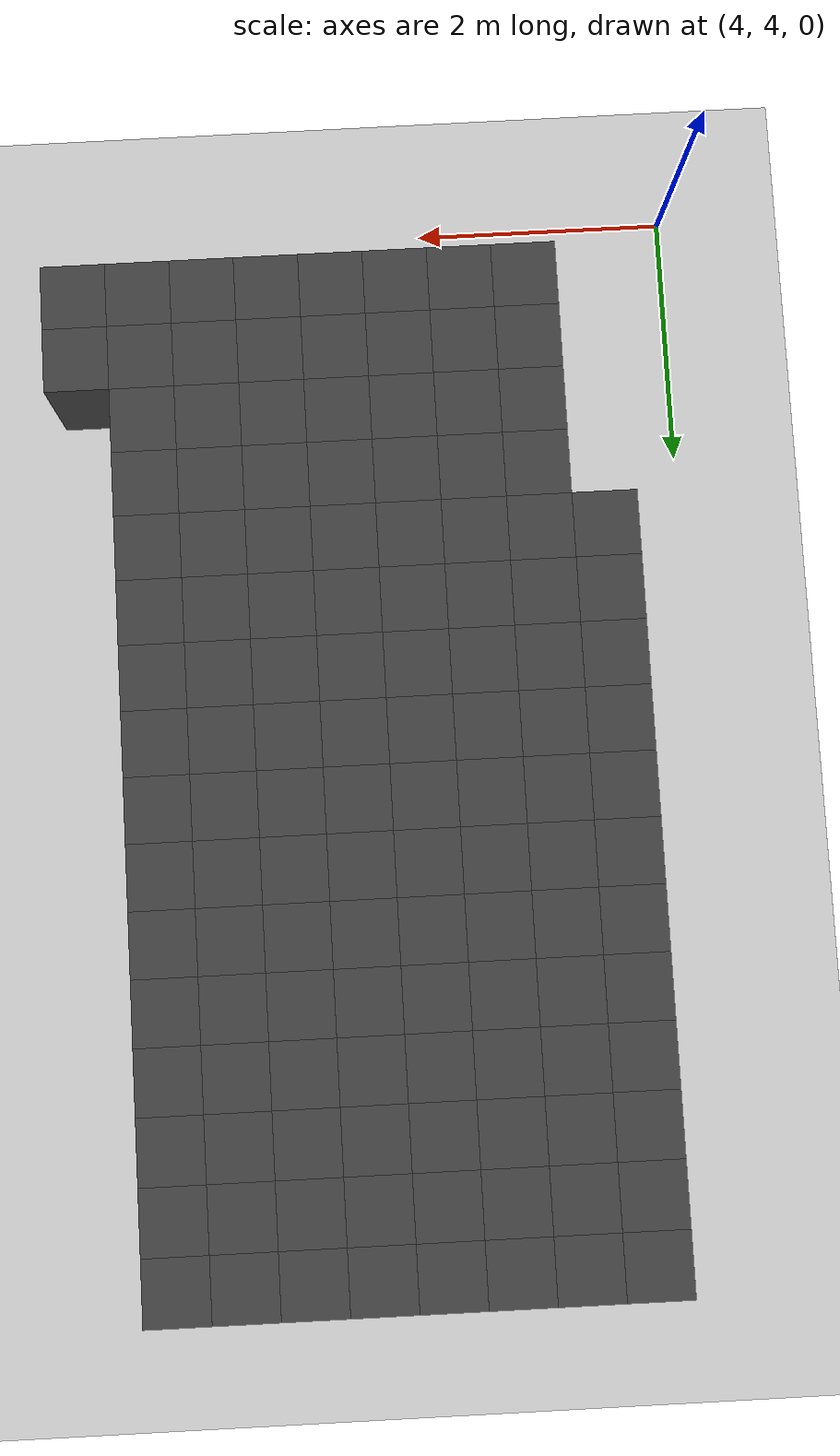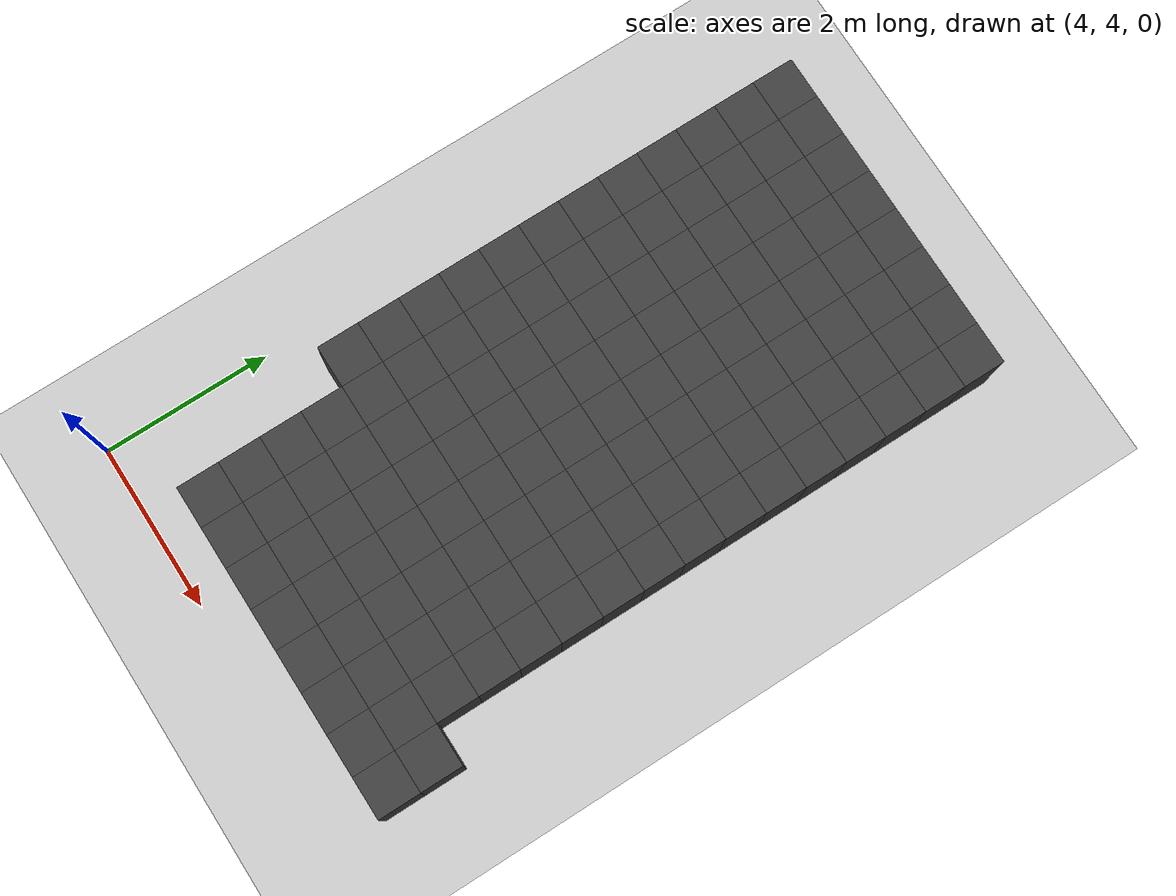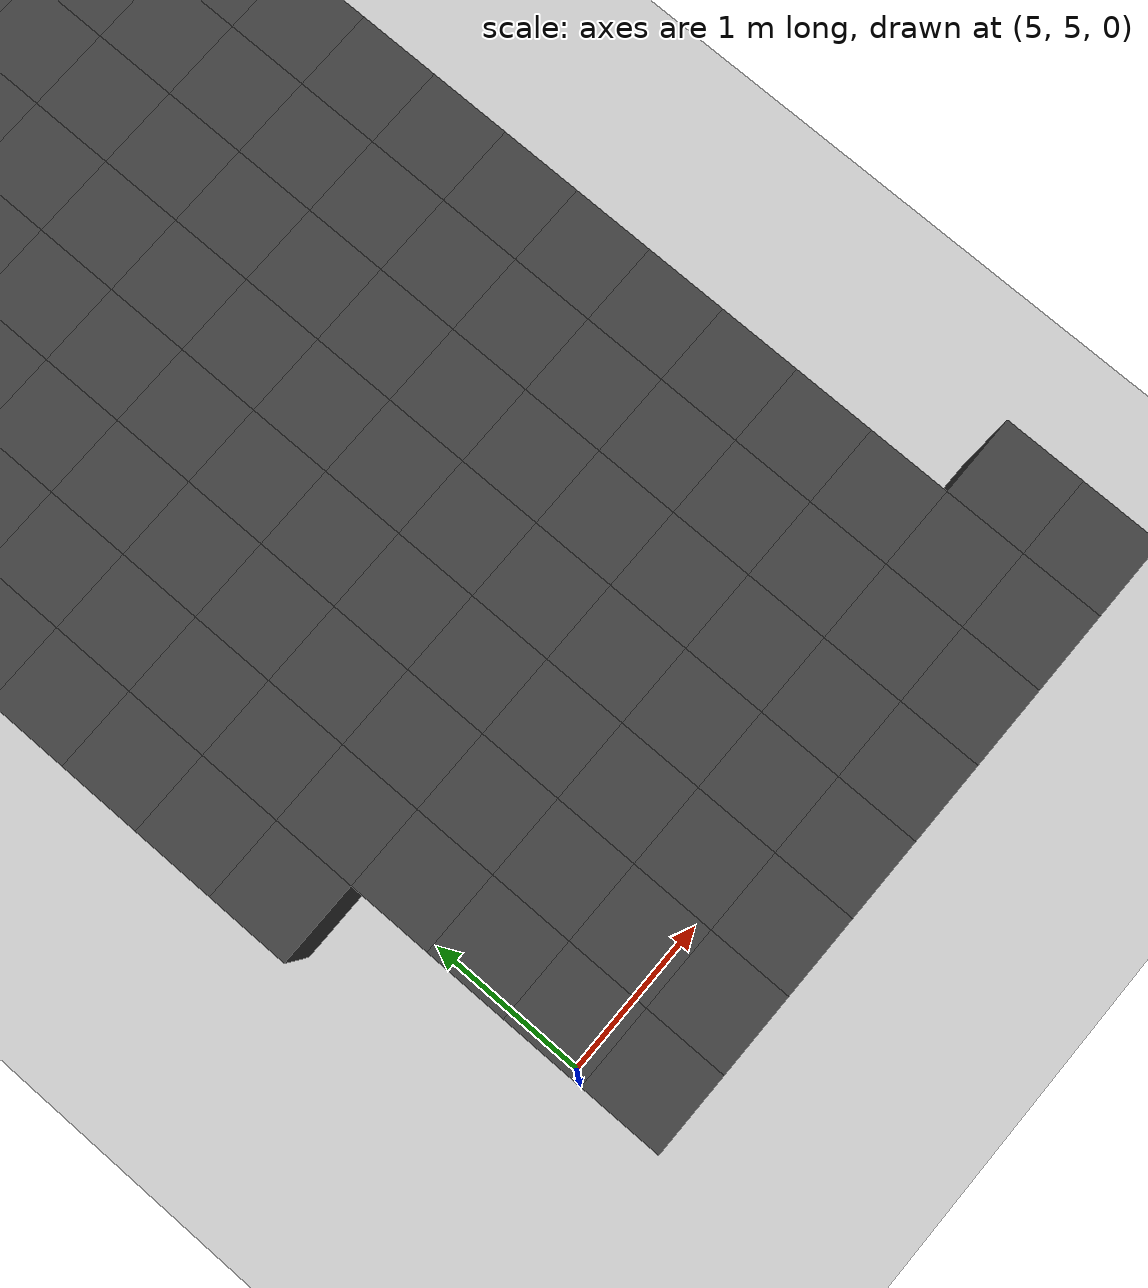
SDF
<sdf version="1.7">
 <world name="map_10764">
  <model name="ground_plane">
   <static>true</static>
   <link name="link">
    <collision name="collision">
     <geometry><plane><normal>0 0 1</normal><size>200 200</size></plane></geometry>
    </collision>
    <visual name="visual">
     <geometry><plane><normal>0 0 1</normal><size>200 200</size></plane></geometry>
     <material><ambient>0.8 0.8 0.8 1</ambient><diffuse>0.8 0.8 0.8 1</diffuse></material>
    </visual>
   </link>
  </model>
  <model name="maze_environment">
   <static>true</static>
   <link name="wall_34">
    <pose>4.750 12.250 0.500 0 0 0</pose>
    <collision name="col"><geometry><box><size>0.5 0.5 1.0</size></box></geometry></collision>
    <visual name="vis">
     <geometry><box><size>0.5 0.5 1.0</size></box></geometry>
     <material><ambient>0.15 0.15 0.15 1</ambient><diffuse>0.25 0.25 0.25 1</diffuse></material>
    </visual>
   </link>
   <link name="wall_35">
    <pose>5.250 12.250 0.500 0 0 0</pose>
    <collision name="col"><geometry><box><size>0.5 0.5 1.0</size></box></geometry></collision>
    <visual name="vis">
     <geometry><box><size>0.5 0.5 1.0</size></box></geometry>
     <material><ambient>0.15 0.15 0.15 1</ambient><diffuse>0.25 0.25 0.25 1</diffuse></material>
    </visual>
   </link>
   <link name="wall_36">
    <pose>5.750 12.250 0.500 0 0 0</pose>
    <collision name="col"><geometry><box><size>0.5 0.5 1.0</size></box></geometry></collision>
    <visual name="vis">
     <geometry><box><size>0.5 0.5 1.0</size></box></geometry>
     <material><ambient>0.15 0.15 0.15 1</ambient><diffuse>0.25 0.25 0.25 1</diffuse></material>
    </visual>
   </link>
   <link name="wall_37">
    <pose>6.250 12.250 0.500 0 0 0</pose>
    <collision name="col"><geometry><box><size>0.5 0.5 1.0</size></box></geometry></collision>
    <visual name="vis">
     <geometry><box><size>0.5 0.5 1.0</size></box></geometry>
     <material><ambient>0.15 0.15 0.15 1</ambient><diffuse>0.25 0.25 0.25 1</diffuse></material>
    </visual>
   </link>
   <link name="wall_38">
    <pose>6.750 12.250 0.500 0 0 0</pose>
    <collision name="col"><geometry><box><size>0.5 0.5 1.0</size></box></geometry></collision>
    <visual name="vis">
     <geometry><box><size>0.5 0.5 1.0</size></box></geometry>
     <material><ambient>0.15 0.15 0.15 1</ambient><diffuse>0.25 0.25 0.25 1</diffuse></material>
    </visual>
   </link>
   <link name="wall_39">
    <pose>7.250 12.250 0.500 0 0 0</pose>
    <collision name="col"><geometry><box><size>0.5 0.5 1.0</size></box></geometry></collision>
    <visual name="vis">
     <geometry><box><size>0.5 0.5 1.0</size></box></geometry>
     <material><ambient>0.15 0.15 0.15 1</ambient><diffuse>0.25 0.25 0.25 1</diffuse></material>
    </visual>
   </link>
   <link name="wall_40">
    <pose>7.750 12.250 0.500 0 0 0</pose>
    <collision name="col"><geometry><box><size>0.5 0.5 1.0</size></box></geometry></collision>
    <visual name="vis">
     <geometry><box><size>0.5 0.5 1.0</size></box></geometry>
     <material><ambient>0.15 0.15 0.15 1</ambient><diffuse>0.25 0.25 0.25 1</diffuse></material>
    </visual>
   </link>
   <link name="wall_41">
    <pose>8.250 12.250 0.500 0 0 0</pose>
    <collision name="col"><geometry><box><size>0.5 0.5 1.0</size></box></geometry></collision>
    <visual name="vis">
     <geometry><box><size>0.5 0.5 1.0</size></box></geometry>
     <material><ambient>0.15 0.15 0.15 1</ambient><diffuse>0.25 0.25 0.25 1</diffuse></material>
    </visual>
   </link>
   <link name="wall_74">
    <pose>4.750 11.750 0.500 0 0 0</pose>
    <collision name="col"><geometry><box><size>0.5 0.5 1.0</size></box></geometry></collision>
    <visual name="vis">
     <geometry><box><size>0.5 0.5 1.0</size></box></geometry>
     <material><ambient>0.15 0.15 0.15 1</ambient><diffuse>0.25 0.25 0.25 1</diffuse></material>
    </visual>
   </link>
   <link name="wall_75">
    <pose>5.250 11.750 0.500 0 0 0</pose>
    <collision name="col"><geometry><box><size>0.5 0.5 1.0</size></box></geometry></collision>
    <visual name="vis">
     <geometry><box><size>0.5 0.5 1.0</size></box></geometry>
     <material><ambient>0.15 0.15 0.15 1</ambient><diffuse>0.25 0.25 0.25 1</diffuse></material>
    </visual>
   </link>
   <link name="wall_76">
    <pose>5.750 11.750 0.500 0 0 0</pose>
    <collision name="col"><geometry><box><size>0.5 0.5 1.0</size></box></geometry></collision>
    <visual name="vis">
     <geometry><box><size>0.5 0.5 1.0</size></box></geometry>
     <material><ambient>0.15 0.15 0.15 1</ambient><diffuse>0.25 0.25 0.25 1</diffuse></material>
    </visual>
   </link>
   <link name="wall_77">
    <pose>6.250 11.750 0.500 0 0 0</pose>
    <collision name="col"><geometry><box><size>0.5 0.5 1.0</size></box></geometry></collision>
    <visual name="vis">
     <geometry><box><size>0.5 0.5 1.0</size></box></geometry>
     <material><ambient>0.15 0.15 0.15 1</ambient><diffuse>0.25 0.25 0.25 1</diffuse></material>
    </visual>
   </link>
   <link name="wall_78">
    <pose>6.750 11.750 0.500 0 0 0</pose>
    <collision name="col"><geometry><box><size>0.5 0.5 1.0</size></box></geometry></collision>
    <visual name="vis">
     <geometry><box><size>0.5 0.5 1.0</size></box></geometry>
     <material><ambient>0.15 0.15 0.15 1</ambient><diffuse>0.25 0.25 0.25 1</diffuse></material>
    </visual>
   </link>
   <link name="wall_79">
    <pose>7.250 11.750 0.500 0 0 0</pose>
    <collision name="col"><geometry><box><size>0.5 0.5 1.0</size></box></geometry></collision>
    <visual name="vis">
     <geometry><box><size>0.5 0.5 1.0</size></box></geometry>
     <material><ambient>0.15 0.15 0.15 1</ambient><diffuse>0.25 0.25 0.25 1</diffuse></material>
    </visual>
   </link>
   <link name="wall_80">
    <pose>7.750 11.750 0.500 0 0 0</pose>
    <collision name="col"><geometry><box><size>0.5 0.5 1.0</size></box></geometry></collision>
    <visual name="vis">
     <geometry><box><size>0.5 0.5 1.0</size></box></geometry>
     <material><ambient>0.15 0.15 0.15 1</ambient><diffuse>0.25 0.25 0.25 1</diffuse></material>
    </visual>
   </link>
   <link name="wall_81">
    <pose>8.250 11.750 0.500 0 0 0</pose>
    <collision name="col"><geometry><box><size>0.5 0.5 1.0</size></box></geometry></collision>
    <visual name="vis">
     <geometry><box><size>0.5 0.5 1.0</size></box></geometry>
     <material><ambient>0.15 0.15 0.15 1</ambient><diffuse>0.25 0.25 0.25 1</diffuse></material>
    </visual>
   </link>
   <link name="wall_114">
    <pose>4.750 11.250 0.500 0 0 0</pose>
    <collision name="col"><geometry><box><size>0.5 0.5 1.0</size></box></geometry></collision>
    <visual name="vis">
     <geometry><box><size>0.5 0.5 1.0</size></box></geometry>
     <material><ambient>0.15 0.15 0.15 1</ambient><diffuse>0.25 0.25 0.25 1</diffuse></material>
    </visual>
   </link>
   <link name="wall_115">
    <pose>5.250 11.250 0.500 0 0 0</pose>
    <collision name="col"><geometry><box><size>0.5 0.5 1.0</size></box></geometry></collision>
    <visual name="vis">
     <geometry><box><size>0.5 0.5 1.0</size></box></geometry>
     <material><ambient>0.15 0.15 0.15 1</ambient><diffuse>0.25 0.25 0.25 1</diffuse></material>
    </visual>
   </link>
   <link name="wall_116">
    <pose>5.750 11.250 0.500 0 0 0</pose>
    <collision name="col"><geometry><box><size>0.5 0.5 1.0</size></box></geometry></collision>
    <visual name="vis">
     <geometry><box><size>0.5 0.5 1.0</size></box></geometry>
     <material><ambient>0.15 0.15 0.15 1</ambient><diffuse>0.25 0.25 0.25 1</diffuse></material>
    </visual>
   </link>
   <link name="wall_117">
    <pose>6.250 11.250 0.500 0 0 0</pose>
    <collision name="col"><geometry><box><size>0.5 0.5 1.0</size></box></geometry></collision>
    <visual name="vis">
     <geometry><box><size>0.5 0.5 1.0</size></box></geometry>
     <material><ambient>0.15 0.15 0.15 1</ambient><diffuse>0.25 0.25 0.25 1</diffuse></material>
    </visual>
   </link>
   <link name="wall_118">
    <pose>6.750 11.250 0.500 0 0 0</pose>
    <collision name="col"><geometry><box><size>0.5 0.5 1.0</size></box></geometry></collision>
    <visual name="vis">
     <geometry><box><size>0.5 0.5 1.0</size></box></geometry>
     <material><ambient>0.15 0.15 0.15 1</ambient><diffuse>0.25 0.25 0.25 1</diffuse></material>
    </visual>
   </link>
   <link name="wall_119">
    <pose>7.250 11.250 0.500 0 0 0</pose>
    <collision name="col"><geometry><box><size>0.5 0.5 1.0</size></box></geometry></collision>
    <visual name="vis">
     <geometry><box><size>0.5 0.5 1.0</size></box></geometry>
     <material><ambient>0.15 0.15 0.15 1</ambient><diffuse>0.25 0.25 0.25 1</diffuse></material>
    </visual>
   </link>
   <link name="wall_120">
    <pose>7.750 11.250 0.500 0 0 0</pose>
    <collision name="col"><geometry><box><size>0.5 0.5 1.0</size></box></geometry></collision>
    <visual name="vis">
     <geometry><box><size>0.5 0.5 1.0</size></box></geometry>
     <material><ambient>0.15 0.15 0.15 1</ambient><diffuse>0.25 0.25 0.25 1</diffuse></material>
    </visual>
   </link>
   <link name="wall_121">
    <pose>8.250 11.250 0.500 0 0 0</pose>
    <collision name="col"><geometry><box><size>0.5 0.5 1.0</size></box></geometry></collision>
    <visual name="vis">
     <geometry><box><size>0.5 0.5 1.0</size></box></geometry>
     <material><ambient>0.15 0.15 0.15 1</ambient><diffuse>0.25 0.25 0.25 1</diffuse></material>
    </visual>
   </link>
   <link name="wall_150">
    <pose>4.750 10.750 0.500 0 0 0</pose>
    <collision name="col"><geometry><box><size>0.5 0.5 1.0</size></box></geometry></collision>
    <visual name="vis">
     <geometry><box><size>0.5 0.5 1.0</size></box></geometry>
     <material><ambient>0.15 0.15 0.15 1</ambient><diffuse>0.25 0.25 0.25 1</diffuse></material>
    </visual>
   </link>
   <link name="wall_151">
    <pose>5.250 10.750 0.500 0 0 0</pose>
    <collision name="col"><geometry><box><size>0.5 0.5 1.0</size></box></geometry></collision>
    <visual name="vis">
     <geometry><box><size>0.5 0.5 1.0</size></box></geometry>
     <material><ambient>0.15 0.15 0.15 1</ambient><diffuse>0.25 0.25 0.25 1</diffuse></material>
    </visual>
   </link>
   <link name="wall_152">
    <pose>5.750 10.750 0.500 0 0 0</pose>
    <collision name="col"><geometry><box><size>0.5 0.5 1.0</size></box></geometry></collision>
    <visual name="vis">
     <geometry><box><size>0.5 0.5 1.0</size></box></geometry>
     <material><ambient>0.15 0.15 0.15 1</ambient><diffuse>0.25 0.25 0.25 1</diffuse></material>
    </visual>
   </link>
   <link name="wall_153">
    <pose>6.250 10.750 0.500 0 0 0</pose>
    <collision name="col"><geometry><box><size>0.5 0.5 1.0</size></box></geometry></collision>
    <visual name="vis">
     <geometry><box><size>0.5 0.5 1.0</size></box></geometry>
     <material><ambient>0.15 0.15 0.15 1</ambient><diffuse>0.25 0.25 0.25 1</diffuse></material>
    </visual>
   </link>
   <link name="wall_154">
    <pose>6.750 10.750 0.500 0 0 0</pose>
    <collision name="col"><geometry><box><size>0.5 0.5 1.0</size></box></geometry></collision>
    <visual name="vis">
     <geometry><box><size>0.5 0.5 1.0</size></box></geometry>
     <material><ambient>0.15 0.15 0.15 1</ambient><diffuse>0.25 0.25 0.25 1</diffuse></material>
    </visual>
   </link>
   <link name="wall_155">
    <pose>7.250 10.750 0.500 0 0 0</pose>
    <collision name="col"><geometry><box><size>0.5 0.5 1.0</size></box></geometry></collision>
    <visual name="vis">
     <geometry><box><size>0.5 0.5 1.0</size></box></geometry>
     <material><ambient>0.15 0.15 0.15 1</ambient><diffuse>0.25 0.25 0.25 1</diffuse></material>
    </visual>
   </link>
   <link name="wall_156">
    <pose>7.750 10.750 0.500 0 0 0</pose>
    <collision name="col"><geometry><box><size>0.5 0.5 1.0</size></box></geometry></collision>
    <visual name="vis">
     <geometry><box><size>0.5 0.5 1.0</size></box></geometry>
     <material><ambient>0.15 0.15 0.15 1</ambient><diffuse>0.25 0.25 0.25 1</diffuse></material>
    </visual>
   </link>
   <link name="wall_157">
    <pose>8.250 10.750 0.500 0 0 0</pose>
    <collision name="col"><geometry><box><size>0.5 0.5 1.0</size></box></geometry></collision>
    <visual name="vis">
     <geometry><box><size>0.5 0.5 1.0</size></box></geometry>
     <material><ambient>0.15 0.15 0.15 1</ambient><diffuse>0.25 0.25 0.25 1</diffuse></material>
    </visual>
   </link>
   <link name="wall_191">
    <pose>4.750 10.250 0.500 0 0 0</pose>
    <collision name="col"><geometry><box><size>0.5 0.5 1.0</size></box></geometry></collision>
    <visual name="vis">
     <geometry><box><size>0.5 0.5 1.0</size></box></geometry>
     <material><ambient>0.15 0.15 0.15 1</ambient><diffuse>0.25 0.25 0.25 1</diffuse></material>
    </visual>
   </link>
   <link name="wall_192">
    <pose>5.250 10.250 0.500 0 0 0</pose>
    <collision name="col"><geometry><box><size>0.5 0.5 1.0</size></box></geometry></collision>
    <visual name="vis">
     <geometry><box><size>0.5 0.5 1.0</size></box></geometry>
     <material><ambient>0.15 0.15 0.15 1</ambient><diffuse>0.25 0.25 0.25 1</diffuse></material>
    </visual>
   </link>
   <link name="wall_193">
    <pose>5.750 10.250 0.500 0 0 0</pose>
    <collision name="col"><geometry><box><size>0.5 0.5 1.0</size></box></geometry></collision>
    <visual name="vis">
     <geometry><box><size>0.5 0.5 1.0</size></box></geometry>
     <material><ambient>0.15 0.15 0.15 1</ambient><diffuse>0.25 0.25 0.25 1</diffuse></material>
    </visual>
   </link>
   <link name="wall_194">
    <pose>6.250 10.250 0.500 0 0 0</pose>
    <collision name="col"><geometry><box><size>0.5 0.5 1.0</size></box></geometry></collision>
    <visual name="vis">
     <geometry><box><size>0.5 0.5 1.0</size></box></geometry>
     <material><ambient>0.15 0.15 0.15 1</ambient><diffuse>0.25 0.25 0.25 1</diffuse></material>
    </visual>
   </link>
   <link name="wall_195">
    <pose>6.750 10.250 0.500 0 0 0</pose>
    <collision name="col"><geometry><box><size>0.5 0.5 1.0</size></box></geometry></collision>
    <visual name="vis">
     <geometry><box><size>0.5 0.5 1.0</size></box></geometry>
     <material><ambient>0.15 0.15 0.15 1</ambient><diffuse>0.25 0.25 0.25 1</diffuse></material>
    </visual>
   </link>
   <link name="wall_196">
    <pose>7.250 10.250 0.500 0 0 0</pose>
    <collision name="col"><geometry><box><size>0.5 0.5 1.0</size></box></geometry></collision>
    <visual name="vis">
     <geometry><box><size>0.5 0.5 1.0</size></box></geometry>
     <material><ambient>0.15 0.15 0.15 1</ambient><diffuse>0.25 0.25 0.25 1</diffuse></material>
    </visual>
   </link>
   <link name="wall_197">
    <pose>7.750 10.250 0.500 0 0 0</pose>
    <collision name="col"><geometry><box><size>0.5 0.5 1.0</size></box></geometry></collision>
    <visual name="vis">
     <geometry><box><size>0.5 0.5 1.0</size></box></geometry>
     <material><ambient>0.15 0.15 0.15 1</ambient><diffuse>0.25 0.25 0.25 1</diffuse></material>
    </visual>
   </link>
   <link name="wall_198">
    <pose>8.250 10.250 0.500 0 0 0</pose>
    <collision name="col"><geometry><box><size>0.5 0.5 1.0</size></box></geometry></collision>
    <visual name="vis">
     <geometry><box><size>0.5 0.5 1.0</size></box></geometry>
     <material><ambient>0.15 0.15 0.15 1</ambient><diffuse>0.25 0.25 0.25 1</diffuse></material>
    </visual>
   </link>
   <link name="wall_239">
    <pose>4.750 9.750 0.500 0 0 0</pose>
    <collision name="col"><geometry><box><size>0.5 0.5 1.0</size></box></geometry></collision>
    <visual name="vis">
     <geometry><box><size>0.5 0.5 1.0</size></box></geometry>
     <material><ambient>0.15 0.15 0.15 1</ambient><diffuse>0.25 0.25 0.25 1</diffuse></material>
    </visual>
   </link>
   <link name="wall_240">
    <pose>5.250 9.750 0.500 0 0 0</pose>
    <collision name="col"><geometry><box><size>0.5 0.5 1.0</size></box></geometry></collision>
    <visual name="vis">
     <geometry><box><size>0.5 0.5 1.0</size></box></geometry>
     <material><ambient>0.15 0.15 0.15 1</ambient><diffuse>0.25 0.25 0.25 1</diffuse></material>
    </visual>
   </link>
   <link name="wall_241">
    <pose>5.750 9.750 0.500 0 0 0</pose>
    <collision name="col"><geometry><box><size>0.5 0.5 1.0</size></box></geometry></collision>
    <visual name="vis">
     <geometry><box><size>0.5 0.5 1.0</size></box></geometry>
     <material><ambient>0.15 0.15 0.15 1</ambient><diffuse>0.25 0.25 0.25 1</diffuse></material>
    </visual>
   </link>
   <link name="wall_242">
    <pose>6.250 9.750 0.500 0 0 0</pose>
    <collision name="col"><geometry><box><size>0.5 0.5 1.0</size></box></geometry></collision>
    <visual name="vis">
     <geometry><box><size>0.5 0.5 1.0</size></box></geometry>
     <material><ambient>0.15 0.15 0.15 1</ambient><diffuse>0.25 0.25 0.25 1</diffuse></material>
    </visual>
   </link>
   <link name="wall_243">
    <pose>6.750 9.750 0.500 0 0 0</pose>
    <collision name="col"><geometry><box><size>0.5 0.5 1.0</size></box></geometry></collision>
    <visual name="vis">
     <geometry><box><size>0.5 0.5 1.0</size></box></geometry>
     <material><ambient>0.15 0.15 0.15 1</ambient><diffuse>0.25 0.25 0.25 1</diffuse></material>
    </visual>
   </link>
   <link name="wall_244">
    <pose>7.250 9.750 0.500 0 0 0</pose>
    <collision name="col"><geometry><box><size>0.5 0.5 1.0</size></box></geometry></collision>
    <visual name="vis">
     <geometry><box><size>0.5 0.5 1.0</size></box></geometry>
     <material><ambient>0.15 0.15 0.15 1</ambient><diffuse>0.25 0.25 0.25 1</diffuse></material>
    </visual>
   </link>
   <link name="wall_245">
    <pose>7.750 9.750 0.500 0 0 0</pose>
    <collision name="col"><geometry><box><size>0.5 0.5 1.0</size></box></geometry></collision>
    <visual name="vis">
     <geometry><box><size>0.5 0.5 1.0</size></box></geometry>
     <material><ambient>0.15 0.15 0.15 1</ambient><diffuse>0.25 0.25 0.25 1</diffuse></material>
    </visual>
   </link>
   <link name="wall_246">
    <pose>8.250 9.750 0.500 0 0 0</pose>
    <collision name="col"><geometry><box><size>0.5 0.5 1.0</size></box></geometry></collision>
    <visual name="vis">
     <geometry><box><size>0.5 0.5 1.0</size></box></geometry>
     <material><ambient>0.15 0.15 0.15 1</ambient><diffuse>0.25 0.25 0.25 1</diffuse></material>
    </visual>
   </link>
   <link name="wall_287">
    <pose>4.750 9.250 0.500 0 0 0</pose>
    <collision name="col"><geometry><box><size>0.5 0.5 1.0</size></box></geometry></collision>
    <visual name="vis">
     <geometry><box><size>0.5 0.5 1.0</size></box></geometry>
     <material><ambient>0.15 0.15 0.15 1</ambient><diffuse>0.25 0.25 0.25 1</diffuse></material>
    </visual>
   </link>
   <link name="wall_288">
    <pose>5.250 9.250 0.500 0 0 0</pose>
    <collision name="col"><geometry><box><size>0.5 0.5 1.0</size></box></geometry></collision>
    <visual name="vis">
     <geometry><box><size>0.5 0.5 1.0</size></box></geometry>
     <material><ambient>0.15 0.15 0.15 1</ambient><diffuse>0.25 0.25 0.25 1</diffuse></material>
    </visual>
   </link>
   <link name="wall_289">
    <pose>5.750 9.250 0.500 0 0 0</pose>
    <collision name="col"><geometry><box><size>0.5 0.5 1.0</size></box></geometry></collision>
    <visual name="vis">
     <geometry><box><size>0.5 0.5 1.0</size></box></geometry>
     <material><ambient>0.15 0.15 0.15 1</ambient><diffuse>0.25 0.25 0.25 1</diffuse></material>
    </visual>
   </link>
   <link name="wall_290">
    <pose>6.250 9.250 0.500 0 0 0</pose>
    <collision name="col"><geometry><box><size>0.5 0.5 1.0</size></box></geometry></collision>
    <visual name="vis">
     <geometry><box><size>0.5 0.5 1.0</size></box></geometry>
     <material><ambient>0.15 0.15 0.15 1</ambient><diffuse>0.25 0.25 0.25 1</diffuse></material>
    </visual>
   </link>
   <link name="wall_291">
    <pose>6.750 9.250 0.500 0 0 0</pose>
    <collision name="col"><geometry><box><size>0.5 0.5 1.0</size></box></geometry></collision>
    <visual name="vis">
     <geometry><box><size>0.5 0.5 1.0</size></box></geometry>
     <material><ambient>0.15 0.15 0.15 1</ambient><diffuse>0.25 0.25 0.25 1</diffuse></material>
    </visual>
   </link>
   <link name="wall_292">
    <pose>7.250 9.250 0.500 0 0 0</pose>
    <collision name="col"><geometry><box><size>0.5 0.5 1.0</size></box></geometry></collision>
    <visual name="vis">
     <geometry><box><size>0.5 0.5 1.0</size></box></geometry>
     <material><ambient>0.15 0.15 0.15 1</ambient><diffuse>0.25 0.25 0.25 1</diffuse></material>
    </visual>
   </link>
   <link name="wall_293">
    <pose>7.750 9.250 0.500 0 0 0</pose>
    <collision name="col"><geometry><box><size>0.5 0.5 1.0</size></box></geometry></collision>
    <visual name="vis">
     <geometry><box><size>0.5 0.5 1.0</size></box></geometry>
     <material><ambient>0.15 0.15 0.15 1</ambient><diffuse>0.25 0.25 0.25 1</diffuse></material>
    </visual>
   </link>
   <link name="wall_294">
    <pose>8.250 9.250 0.500 0 0 0</pose>
    <collision name="col"><geometry><box><size>0.5 0.5 1.0</size></box></geometry></collision>
    <visual name="vis">
     <geometry><box><size>0.5 0.5 1.0</size></box></geometry>
     <material><ambient>0.15 0.15 0.15 1</ambient><diffuse>0.25 0.25 0.25 1</diffuse></material>
    </visual>
   </link>
   <link name="wall_335">
    <pose>4.750 8.750 0.500 0 0 0</pose>
    <collision name="col"><geometry><box><size>0.5 0.5 1.0</size></box></geometry></collision>
    <visual name="vis">
     <geometry><box><size>0.5 0.5 1.0</size></box></geometry>
     <material><ambient>0.15 0.15 0.15 1</ambient><diffuse>0.25 0.25 0.25 1</diffuse></material>
    </visual>
   </link>
   <link name="wall_336">
    <pose>5.250 8.750 0.500 0 0 0</pose>
    <collision name="col"><geometry><box><size>0.5 0.5 1.0</size></box></geometry></collision>
    <visual name="vis">
     <geometry><box><size>0.5 0.5 1.0</size></box></geometry>
     <material><ambient>0.15 0.15 0.15 1</ambient><diffuse>0.25 0.25 0.25 1</diffuse></material>
    </visual>
   </link>
   <link name="wall_337">
    <pose>5.750 8.750 0.500 0 0 0</pose>
    <collision name="col"><geometry><box><size>0.5 0.5 1.0</size></box></geometry></collision>
    <visual name="vis">
     <geometry><box><size>0.5 0.5 1.0</size></box></geometry>
     <material><ambient>0.15 0.15 0.15 1</ambient><diffuse>0.25 0.25 0.25 1</diffuse></material>
    </visual>
   </link>
   <link name="wall_338">
    <pose>6.250 8.750 0.500 0 0 0</pose>
    <collision name="col"><geometry><box><size>0.5 0.5 1.0</size></box></geometry></collision>
    <visual name="vis">
     <geometry><box><size>0.5 0.5 1.0</size></box></geometry>
     <material><ambient>0.15 0.15 0.15 1</ambient><diffuse>0.25 0.25 0.25 1</diffuse></material>
    </visual>
   </link>
   <link name="wall_339">
    <pose>6.750 8.750 0.500 0 0 0</pose>
    <collision name="col"><geometry><box><size>0.5 0.5 1.0</size></box></geometry></collision>
    <visual name="vis">
     <geometry><box><size>0.5 0.5 1.0</size></box></geometry>
     <material><ambient>0.15 0.15 0.15 1</ambient><diffuse>0.25 0.25 0.25 1</diffuse></material>
    </visual>
   </link>
   <link name="wall_340">
    <pose>7.250 8.750 0.500 0 0 0</pose>
    <collision name="col"><geometry><box><size>0.5 0.5 1.0</size></box></geometry></collision>
    <visual name="vis">
     <geometry><box><size>0.5 0.5 1.0</size></box></geometry>
     <material><ambient>0.15 0.15 0.15 1</ambient><diffuse>0.25 0.25 0.25 1</diffuse></material>
    </visual>
   </link>
   <link name="wall_341">
    <pose>7.750 8.750 0.500 0 0 0</pose>
    <collision name="col"><geometry><box><size>0.5 0.5 1.0</size></box></geometry></collision>
    <visual name="vis">
     <geometry><box><size>0.5 0.5 1.0</size></box></geometry>
     <material><ambient>0.15 0.15 0.15 1</ambient><diffuse>0.25 0.25 0.25 1</diffuse></material>
    </visual>
   </link>
   <link name="wall_342">
    <pose>8.250 8.750 0.500 0 0 0</pose>
    <collision name="col"><geometry><box><size>0.5 0.5 1.0</size></box></geometry></collision>
    <visual name="vis">
     <geometry><box><size>0.5 0.5 1.0</size></box></geometry>
     <material><ambient>0.15 0.15 0.15 1</ambient><diffuse>0.25 0.25 0.25 1</diffuse></material>
    </visual>
   </link>
   <link name="wall_383">
    <pose>4.750 8.250 0.500 0 0 0</pose>
    <collision name="col"><geometry><box><size>0.5 0.5 1.0</size></box></geometry></collision>
    <visual name="vis">
     <geometry><box><size>0.5 0.5 1.0</size></box></geometry>
     <material><ambient>0.15 0.15 0.15 1</ambient><diffuse>0.25 0.25 0.25 1</diffuse></material>
    </visual>
   </link>
   <link name="wall_384">
    <pose>5.250 8.250 0.500 0 0 0</pose>
    <collision name="col"><geometry><box><size>0.5 0.5 1.0</size></box></geometry></collision>
    <visual name="vis">
     <geometry><box><size>0.5 0.5 1.0</size></box></geometry>
     <material><ambient>0.15 0.15 0.15 1</ambient><diffuse>0.25 0.25 0.25 1</diffuse></material>
    </visual>
   </link>
   <link name="wall_385">
    <pose>5.750 8.250 0.500 0 0 0</pose>
    <collision name="col"><geometry><box><size>0.5 0.5 1.0</size></box></geometry></collision>
    <visual name="vis">
     <geometry><box><size>0.5 0.5 1.0</size></box></geometry>
     <material><ambient>0.15 0.15 0.15 1</ambient><diffuse>0.25 0.25 0.25 1</diffuse></material>
    </visual>
   </link>
   <link name="wall_386">
    <pose>6.250 8.250 0.500 0 0 0</pose>
    <collision name="col"><geometry><box><size>0.5 0.5 1.0</size></box></geometry></collision>
    <visual name="vis">
     <geometry><box><size>0.5 0.5 1.0</size></box></geometry>
     <material><ambient>0.15 0.15 0.15 1</ambient><diffuse>0.25 0.25 0.25 1</diffuse></material>
    </visual>
   </link>
   <link name="wall_387">
    <pose>6.750 8.250 0.500 0 0 0</pose>
    <collision name="col"><geometry><box><size>0.5 0.5 1.0</size></box></geometry></collision>
    <visual name="vis">
     <geometry><box><size>0.5 0.5 1.0</size></box></geometry>
     <material><ambient>0.15 0.15 0.15 1</ambient><diffuse>0.25 0.25 0.25 1</diffuse></material>
    </visual>
   </link>
   <link name="wall_388">
    <pose>7.250 8.250 0.500 0 0 0</pose>
    <collision name="col"><geometry><box><size>0.5 0.5 1.0</size></box></geometry></collision>
    <visual name="vis">
     <geometry><box><size>0.5 0.5 1.0</size></box></geometry>
     <material><ambient>0.15 0.15 0.15 1</ambient><diffuse>0.25 0.25 0.25 1</diffuse></material>
    </visual>
   </link>
   <link name="wall_389">
    <pose>7.750 8.250 0.500 0 0 0</pose>
    <collision name="col"><geometry><box><size>0.5 0.5 1.0</size></box></geometry></collision>
    <visual name="vis">
     <geometry><box><size>0.5 0.5 1.0</size></box></geometry>
     <material><ambient>0.15 0.15 0.15 1</ambient><diffuse>0.25 0.25 0.25 1</diffuse></material>
    </visual>
   </link>
   <link name="wall_390">
    <pose>8.250 8.250 0.500 0 0 0</pose>
    <collision name="col"><geometry><box><size>0.5 0.5 1.0</size></box></geometry></collision>
    <visual name="vis">
     <geometry><box><size>0.5 0.5 1.0</size></box></geometry>
     <material><ambient>0.15 0.15 0.15 1</ambient><diffuse>0.25 0.25 0.25 1</diffuse></material>
    </visual>
   </link>
   <link name="wall_431">
    <pose>4.750 7.750 0.500 0 0 0</pose>
    <collision name="col"><geometry><box><size>0.5 0.5 1.0</size></box></geometry></collision>
    <visual name="vis">
     <geometry><box><size>0.5 0.5 1.0</size></box></geometry>
     <material><ambient>0.15 0.15 0.15 1</ambient><diffuse>0.25 0.25 0.25 1</diffuse></material>
    </visual>
   </link>
   <link name="wall_432">
    <pose>5.250 7.750 0.500 0 0 0</pose>
    <collision name="col"><geometry><box><size>0.5 0.5 1.0</size></box></geometry></collision>
    <visual name="vis">
     <geometry><box><size>0.5 0.5 1.0</size></box></geometry>
     <material><ambient>0.15 0.15 0.15 1</ambient><diffuse>0.25 0.25 0.25 1</diffuse></material>
    </visual>
   </link>
   <link name="wall_433">
    <pose>5.750 7.750 0.500 0 0 0</pose>
    <collision name="col"><geometry><box><size>0.5 0.5 1.0</size></box></geometry></collision>
    <visual name="vis">
     <geometry><box><size>0.5 0.5 1.0</size></box></geometry>
     <material><ambient>0.15 0.15 0.15 1</ambient><diffuse>0.25 0.25 0.25 1</diffuse></material>
    </visual>
   </link>
   <link name="wall_434">
    <pose>6.250 7.750 0.500 0 0 0</pose>
    <collision name="col"><geometry><box><size>0.5 0.5 1.0</size></box></geometry></collision>
    <visual name="vis">
     <geometry><box><size>0.5 0.5 1.0</size></box></geometry>
     <material><ambient>0.15 0.15 0.15 1</ambient><diffuse>0.25 0.25 0.25 1</diffuse></material>
    </visual>
   </link>
   <link name="wall_435">
    <pose>6.750 7.750 0.500 0 0 0</pose>
    <collision name="col"><geometry><box><size>0.5 0.5 1.0</size></box></geometry></collision>
    <visual name="vis">
     <geometry><box><size>0.5 0.5 1.0</size></box></geometry>
     <material><ambient>0.15 0.15 0.15 1</ambient><diffuse>0.25 0.25 0.25 1</diffuse></material>
    </visual>
   </link>
   <link name="wall_436">
    <pose>7.250 7.750 0.500 0 0 0</pose>
    <collision name="col"><geometry><box><size>0.5 0.5 1.0</size></box></geometry></collision>
    <visual name="vis">
     <geometry><box><size>0.5 0.5 1.0</size></box></geometry>
     <material><ambient>0.15 0.15 0.15 1</ambient><diffuse>0.25 0.25 0.25 1</diffuse></material>
    </visual>
   </link>
   <link name="wall_437">
    <pose>7.750 7.750 0.500 0 0 0</pose>
    <collision name="col"><geometry><box><size>0.5 0.5 1.0</size></box></geometry></collision>
    <visual name="vis">
     <geometry><box><size>0.5 0.5 1.0</size></box></geometry>
     <material><ambient>0.15 0.15 0.15 1</ambient><diffuse>0.25 0.25 0.25 1</diffuse></material>
    </visual>
   </link>
   <link name="wall_438">
    <pose>8.250 7.750 0.500 0 0 0</pose>
    <collision name="col"><geometry><box><size>0.5 0.5 1.0</size></box></geometry></collision>
    <visual name="vis">
     <geometry><box><size>0.5 0.5 1.0</size></box></geometry>
     <material><ambient>0.15 0.15 0.15 1</ambient><diffuse>0.25 0.25 0.25 1</diffuse></material>
    </visual>
   </link>
   <link name="wall_479">
    <pose>4.750 7.250 0.500 0 0 0</pose>
    <collision name="col"><geometry><box><size>0.5 0.5 1.0</size></box></geometry></collision>
    <visual name="vis">
     <geometry><box><size>0.5 0.5 1.0</size></box></geometry>
     <material><ambient>0.15 0.15 0.15 1</ambient><diffuse>0.25 0.25 0.25 1</diffuse></material>
    </visual>
   </link>
   <link name="wall_480">
    <pose>5.250 7.250 0.500 0 0 0</pose>
    <collision name="col"><geometry><box><size>0.5 0.5 1.0</size></box></geometry></collision>
    <visual name="vis">
     <geometry><box><size>0.5 0.5 1.0</size></box></geometry>
     <material><ambient>0.15 0.15 0.15 1</ambient><diffuse>0.25 0.25 0.25 1</diffuse></material>
    </visual>
   </link>
   <link name="wall_481">
    <pose>5.750 7.250 0.500 0 0 0</pose>
    <collision name="col"><geometry><box><size>0.5 0.5 1.0</size></box></geometry></collision>
    <visual name="vis">
     <geometry><box><size>0.5 0.5 1.0</size></box></geometry>
     <material><ambient>0.15 0.15 0.15 1</ambient><diffuse>0.25 0.25 0.25 1</diffuse></material>
    </visual>
   </link>
   <link name="wall_482">
    <pose>6.250 7.250 0.500 0 0 0</pose>
    <collision name="col"><geometry><box><size>0.5 0.5 1.0</size></box></geometry></collision>
    <visual name="vis">
     <geometry><box><size>0.5 0.5 1.0</size></box></geometry>
     <material><ambient>0.15 0.15 0.15 1</ambient><diffuse>0.25 0.25 0.25 1</diffuse></material>
    </visual>
   </link>
   <link name="wall_483">
    <pose>6.750 7.250 0.500 0 0 0</pose>
    <collision name="col"><geometry><box><size>0.5 0.5 1.0</size></box></geometry></collision>
    <visual name="vis">
     <geometry><box><size>0.5 0.5 1.0</size></box></geometry>
     <material><ambient>0.15 0.15 0.15 1</ambient><diffuse>0.25 0.25 0.25 1</diffuse></material>
    </visual>
   </link>
   <link name="wall_484">
    <pose>7.250 7.250 0.500 0 0 0</pose>
    <collision name="col"><geometry><box><size>0.5 0.5 1.0</size></box></geometry></collision>
    <visual name="vis">
     <geometry><box><size>0.5 0.5 1.0</size></box></geometry>
     <material><ambient>0.15 0.15 0.15 1</ambient><diffuse>0.25 0.25 0.25 1</diffuse></material>
    </visual>
   </link>
   <link name="wall_485">
    <pose>7.750 7.250 0.500 0 0 0</pose>
    <collision name="col"><geometry><box><size>0.5 0.5 1.0</size></box></geometry></collision>
    <visual name="vis">
     <geometry><box><size>0.5 0.5 1.0</size></box></geometry>
     <material><ambient>0.15 0.15 0.15 1</ambient><diffuse>0.25 0.25 0.25 1</diffuse></material>
    </visual>
   </link>
   <link name="wall_486">
    <pose>8.250 7.250 0.500 0 0 0</pose>
    <collision name="col"><geometry><box><size>0.5 0.5 1.0</size></box></geometry></collision>
    <visual name="vis">
     <geometry><box><size>0.5 0.5 1.0</size></box></geometry>
     <material><ambient>0.15 0.15 0.15 1</ambient><diffuse>0.25 0.25 0.25 1</diffuse></material>
    </visual>
   </link>
   <link name="wall_527">
    <pose>4.750 6.750 0.500 0 0 0</pose>
    <collision name="col"><geometry><box><size>0.5 0.5 1.0</size></box></geometry></collision>
    <visual name="vis">
     <geometry><box><size>0.5 0.5 1.0</size></box></geometry>
     <material><ambient>0.15 0.15 0.15 1</ambient><diffuse>0.25 0.25 0.25 1</diffuse></material>
    </visual>
   </link>
   <link name="wall_528">
    <pose>5.250 6.750 0.500 0 0 0</pose>
    <collision name="col"><geometry><box><size>0.5 0.5 1.0</size></box></geometry></collision>
    <visual name="vis">
     <geometry><box><size>0.5 0.5 1.0</size></box></geometry>
     <material><ambient>0.15 0.15 0.15 1</ambient><diffuse>0.25 0.25 0.25 1</diffuse></material>
    </visual>
   </link>
   <link name="wall_529">
    <pose>5.750 6.750 0.500 0 0 0</pose>
    <collision name="col"><geometry><box><size>0.5 0.5 1.0</size></box></geometry></collision>
    <visual name="vis">
     <geometry><box><size>0.5 0.5 1.0</size></box></geometry>
     <material><ambient>0.15 0.15 0.15 1</ambient><diffuse>0.25 0.25 0.25 1</diffuse></material>
    </visual>
   </link>
   <link name="wall_530">
    <pose>6.250 6.750 0.500 0 0 0</pose>
    <collision name="col"><geometry><box><size>0.5 0.5 1.0</size></box></geometry></collision>
    <visual name="vis">
     <geometry><box><size>0.5 0.5 1.0</size></box></geometry>
     <material><ambient>0.15 0.15 0.15 1</ambient><diffuse>0.25 0.25 0.25 1</diffuse></material>
    </visual>
   </link>
   <link name="wall_531">
    <pose>6.750 6.750 0.500 0 0 0</pose>
    <collision name="col"><geometry><box><size>0.5 0.5 1.0</size></box></geometry></collision>
    <visual name="vis">
     <geometry><box><size>0.5 0.5 1.0</size></box></geometry>
     <material><ambient>0.15 0.15 0.15 1</ambient><diffuse>0.25 0.25 0.25 1</diffuse></material>
    </visual>
   </link>
   <link name="wall_532">
    <pose>7.250 6.750 0.500 0 0 0</pose>
    <collision name="col"><geometry><box><size>0.5 0.5 1.0</size></box></geometry></collision>
    <visual name="vis">
     <geometry><box><size>0.5 0.5 1.0</size></box></geometry>
     <material><ambient>0.15 0.15 0.15 1</ambient><diffuse>0.25 0.25 0.25 1</diffuse></material>
    </visual>
   </link>
   <link name="wall_533">
    <pose>7.750 6.750 0.500 0 0 0</pose>
    <collision name="col"><geometry><box><size>0.5 0.5 1.0</size></box></geometry></collision>
    <visual name="vis">
     <geometry><box><size>0.5 0.5 1.0</size></box></geometry>
     <material><ambient>0.15 0.15 0.15 1</ambient><diffuse>0.25 0.25 0.25 1</diffuse></material>
    </visual>
   </link>
   <link name="wall_534">
    <pose>8.250 6.750 0.500 0 0 0</pose>
    <collision name="col"><geometry><box><size>0.5 0.5 1.0</size></box></geometry></collision>
    <visual name="vis">
     <geometry><box><size>0.5 0.5 1.0</size></box></geometry>
     <material><ambient>0.15 0.15 0.15 1</ambient><diffuse>0.25 0.25 0.25 1</diffuse></material>
    </visual>
   </link>
   <link name="wall_576">
    <pose>5.250 6.250 0.500 0 0 0</pose>
    <collision name="col"><geometry><box><size>0.5 0.5 1.0</size></box></geometry></collision>
    <visual name="vis">
     <geometry><box><size>0.5 0.5 1.0</size></box></geometry>
     <material><ambient>0.15 0.15 0.15 1</ambient><diffuse>0.25 0.25 0.25 1</diffuse></material>
    </visual>
   </link>
   <link name="wall_577">
    <pose>5.750 6.250 0.500 0 0 0</pose>
    <collision name="col"><geometry><box><size>0.5 0.5 1.0</size></box></geometry></collision>
    <visual name="vis">
     <geometry><box><size>0.5 0.5 1.0</size></box></geometry>
     <material><ambient>0.15 0.15 0.15 1</ambient><diffuse>0.25 0.25 0.25 1</diffuse></material>
    </visual>
   </link>
   <link name="wall_578">
    <pose>6.250 6.250 0.500 0 0 0</pose>
    <collision name="col"><geometry><box><size>0.5 0.5 1.0</size></box></geometry></collision>
    <visual name="vis">
     <geometry><box><size>0.5 0.5 1.0</size></box></geometry>
     <material><ambient>0.15 0.15 0.15 1</ambient><diffuse>0.25 0.25 0.25 1</diffuse></material>
    </visual>
   </link>
   <link name="wall_579">
    <pose>6.750 6.250 0.500 0 0 0</pose>
    <collision name="col"><geometry><box><size>0.5 0.5 1.0</size></box></geometry></collision>
    <visual name="vis">
     <geometry><box><size>0.5 0.5 1.0</size></box></geometry>
     <material><ambient>0.15 0.15 0.15 1</ambient><diffuse>0.25 0.25 0.25 1</diffuse></material>
    </visual>
   </link>
   <link name="wall_580">
    <pose>7.250 6.250 0.500 0 0 0</pose>
    <collision name="col"><geometry><box><size>0.5 0.5 1.0</size></box></geometry></collision>
    <visual name="vis">
     <geometry><box><size>0.5 0.5 1.0</size></box></geometry>
     <material><ambient>0.15 0.15 0.15 1</ambient><diffuse>0.25 0.25 0.25 1</diffuse></material>
    </visual>
   </link>
   <link name="wall_581">
    <pose>7.750 6.250 0.500 0 0 0</pose>
    <collision name="col"><geometry><box><size>0.5 0.5 1.0</size></box></geometry></collision>
    <visual name="vis">
     <geometry><box><size>0.5 0.5 1.0</size></box></geometry>
     <material><ambient>0.15 0.15 0.15 1</ambient><diffuse>0.25 0.25 0.25 1</diffuse></material>
    </visual>
   </link>
   <link name="wall_582">
    <pose>8.250 6.250 0.500 0 0 0</pose>
    <collision name="col"><geometry><box><size>0.5 0.5 1.0</size></box></geometry></collision>
    <visual name="vis">
     <geometry><box><size>0.5 0.5 1.0</size></box></geometry>
     <material><ambient>0.15 0.15 0.15 1</ambient><diffuse>0.25 0.25 0.25 1</diffuse></material>
    </visual>
   </link>
   <link name="wall_624">
    <pose>5.250 5.750 0.500 0 0 0</pose>
    <collision name="col"><geometry><box><size>0.5 0.5 1.0</size></box></geometry></collision>
    <visual name="vis">
     <geometry><box><size>0.5 0.5 1.0</size></box></geometry>
     <material><ambient>0.15 0.15 0.15 1</ambient><diffuse>0.25 0.25 0.25 1</diffuse></material>
    </visual>
   </link>
   <link name="wall_625">
    <pose>5.750 5.750 0.500 0 0 0</pose>
    <collision name="col"><geometry><box><size>0.5 0.5 1.0</size></box></geometry></collision>
    <visual name="vis">
     <geometry><box><size>0.5 0.5 1.0</size></box></geometry>
     <material><ambient>0.15 0.15 0.15 1</ambient><diffuse>0.25 0.25 0.25 1</diffuse></material>
    </visual>
   </link>
   <link name="wall_626">
    <pose>6.250 5.750 0.500 0 0 0</pose>
    <collision name="col"><geometry><box><size>0.5 0.5 1.0</size></box></geometry></collision>
    <visual name="vis">
     <geometry><box><size>0.5 0.5 1.0</size></box></geometry>
     <material><ambient>0.15 0.15 0.15 1</ambient><diffuse>0.25 0.25 0.25 1</diffuse></material>
    </visual>
   </link>
   <link name="wall_627">
    <pose>6.750 5.750 0.500 0 0 0</pose>
    <collision name="col"><geometry><box><size>0.5 0.5 1.0</size></box></geometry></collision>
    <visual name="vis">
     <geometry><box><size>0.5 0.5 1.0</size></box></geometry>
     <material><ambient>0.15 0.15 0.15 1</ambient><diffuse>0.25 0.25 0.25 1</diffuse></material>
    </visual>
   </link>
   <link name="wall_628">
    <pose>7.250 5.750 0.500 0 0 0</pose>
    <collision name="col"><geometry><box><size>0.5 0.5 1.0</size></box></geometry></collision>
    <visual name="vis">
     <geometry><box><size>0.5 0.5 1.0</size></box></geometry>
     <material><ambient>0.15 0.15 0.15 1</ambient><diffuse>0.25 0.25 0.25 1</diffuse></material>
    </visual>
   </link>
   <link name="wall_629">
    <pose>7.750 5.750 0.500 0 0 0</pose>
    <collision name="col"><geometry><box><size>0.5 0.5 1.0</size></box></geometry></collision>
    <visual name="vis">
     <geometry><box><size>0.5 0.5 1.0</size></box></geometry>
     <material><ambient>0.15 0.15 0.15 1</ambient><diffuse>0.25 0.25 0.25 1</diffuse></material>
    </visual>
   </link>
   <link name="wall_630">
    <pose>8.250 5.750 0.500 0 0 0</pose>
    <collision name="col"><geometry><box><size>0.5 0.5 1.0</size></box></geometry></collision>
    <visual name="vis">
     <geometry><box><size>0.5 0.5 1.0</size></box></geometry>
     <material><ambient>0.15 0.15 0.15 1</ambient><diffuse>0.25 0.25 0.25 1</diffuse></material>
    </visual>
   </link>
   <link name="wall_672">
    <pose>5.250 5.250 0.500 0 0 0</pose>
    <collision name="col"><geometry><box><size>0.5 0.5 1.0</size></box></geometry></collision>
    <visual name="vis">
     <geometry><box><size>0.5 0.5 1.0</size></box></geometry>
     <material><ambient>0.15 0.15 0.15 1</ambient><diffuse>0.25 0.25 0.25 1</diffuse></material>
    </visual>
   </link>
   <link name="wall_673">
    <pose>5.750 5.250 0.500 0 0 0</pose>
    <collision name="col"><geometry><box><size>0.5 0.5 1.0</size></box></geometry></collision>
    <visual name="vis">
     <geometry><box><size>0.5 0.5 1.0</size></box></geometry>
     <material><ambient>0.15 0.15 0.15 1</ambient><diffuse>0.25 0.25 0.25 1</diffuse></material>
    </visual>
   </link>
   <link name="wall_674">
    <pose>6.250 5.250 0.500 0 0 0</pose>
    <collision name="col"><geometry><box><size>0.5 0.5 1.0</size></box></geometry></collision>
    <visual name="vis">
     <geometry><box><size>0.5 0.5 1.0</size></box></geometry>
     <material><ambient>0.15 0.15 0.15 1</ambient><diffuse>0.25 0.25 0.25 1</diffuse></material>
    </visual>
   </link>
   <link name="wall_675">
    <pose>6.750 5.250 0.500 0 0 0</pose>
    <collision name="col"><geometry><box><size>0.5 0.5 1.0</size></box></geometry></collision>
    <visual name="vis">
     <geometry><box><size>0.5 0.5 1.0</size></box></geometry>
     <material><ambient>0.15 0.15 0.15 1</ambient><diffuse>0.25 0.25 0.25 1</diffuse></material>
    </visual>
   </link>
   <link name="wall_676">
    <pose>7.250 5.250 0.500 0 0 0</pose>
    <collision name="col"><geometry><box><size>0.5 0.5 1.0</size></box></geometry></collision>
    <visual name="vis">
     <geometry><box><size>0.5 0.5 1.0</size></box></geometry>
     <material><ambient>0.15 0.15 0.15 1</ambient><diffuse>0.25 0.25 0.25 1</diffuse></material>
    </visual>
   </link>
   <link name="wall_677">
    <pose>7.750 5.250 0.500 0 0 0</pose>
    <collision name="col"><geometry><box><size>0.5 0.5 1.0</size></box></geometry></collision>
    <visual name="vis">
     <geometry><box><size>0.5 0.5 1.0</size></box></geometry>
     <material><ambient>0.15 0.15 0.15 1</ambient><diffuse>0.25 0.25 0.25 1</diffuse></material>
    </visual>
   </link>
   <link name="wall_678">
    <pose>8.250 5.250 0.500 0 0 0</pose>
    <collision name="col"><geometry><box><size>0.5 0.5 1.0</size></box></geometry></collision>
    <visual name="vis">
     <geometry><box><size>0.5 0.5 1.0</size></box></geometry>
     <material><ambient>0.15 0.15 0.15 1</ambient><diffuse>0.25 0.25 0.25 1</diffuse></material>
    </visual>
   </link>
   <link name="wall_679">
    <pose>8.750 5.250 0.500 0 0 0</pose>
    <collision name="col"><geometry><box><size>0.5 0.5 1.0</size></box></geometry></collision>
    <visual name="vis">
     <geometry><box><size>0.5 0.5 1.0</size></box></geometry>
     <material><ambient>0.15 0.15 0.15 1</ambient><diffuse>0.25 0.25 0.25 1</diffuse></material>
    </visual>
   </link>
   <link name="wall_720">
    <pose>5.250 4.750 0.500 0 0 0</pose>
    <collision name="col"><geometry><box><size>0.5 0.5 1.0</size></box></geometry></collision>
    <visual name="vis">
     <geometry><box><size>0.5 0.5 1.0</size></box></geometry>
     <material><ambient>0.15 0.15 0.15 1</ambient><diffuse>0.25 0.25 0.25 1</diffuse></material>
    </visual>
   </link>
   <link name="wall_721">
    <pose>5.750 4.750 0.500 0 0 0</pose>
    <collision name="col"><geometry><box><size>0.5 0.5 1.0</size></box></geometry></collision>
    <visual name="vis">
     <geometry><box><size>0.5 0.5 1.0</size></box></geometry>
     <material><ambient>0.15 0.15 0.15 1</ambient><diffuse>0.25 0.25 0.25 1</diffuse></material>
    </visual>
   </link>
   <link name="wall_722">
    <pose>6.250 4.750 0.500 0 0 0</pose>
    <collision name="col"><geometry><box><size>0.5 0.5 1.0</size></box></geometry></collision>
    <visual name="vis">
     <geometry><box><size>0.5 0.5 1.0</size></box></geometry>
     <material><ambient>0.15 0.15 0.15 1</ambient><diffuse>0.25 0.25 0.25 1</diffuse></material>
    </visual>
   </link>
   <link name="wall_723">
    <pose>6.750 4.750 0.500 0 0 0</pose>
    <collision name="col"><geometry><box><size>0.5 0.5 1.0</size></box></geometry></collision>
    <visual name="vis">
     <geometry><box><size>0.5 0.5 1.0</size></box></geometry>
     <material><ambient>0.15 0.15 0.15 1</ambient><diffuse>0.25 0.25 0.25 1</diffuse></material>
    </visual>
   </link>
   <link name="wall_724">
    <pose>7.250 4.750 0.500 0 0 0</pose>
    <collision name="col"><geometry><box><size>0.5 0.5 1.0</size></box></geometry></collision>
    <visual name="vis">
     <geometry><box><size>0.5 0.5 1.0</size></box></geometry>
     <material><ambient>0.15 0.15 0.15 1</ambient><diffuse>0.25 0.25 0.25 1</diffuse></material>
    </visual>
   </link>
   <link name="wall_725">
    <pose>7.750 4.750 0.500 0 0 0</pose>
    <collision name="col"><geometry><box><size>0.5 0.5 1.0</size></box></geometry></collision>
    <visual name="vis">
     <geometry><box><size>0.5 0.5 1.0</size></box></geometry>
     <material><ambient>0.15 0.15 0.15 1</ambient><diffuse>0.25 0.25 0.25 1</diffuse></material>
    </visual>
   </link>
   <link name="wall_726">
    <pose>8.250 4.750 0.500 0 0 0</pose>
    <collision name="col"><geometry><box><size>0.5 0.5 1.0</size></box></geometry></collision>
    <visual name="vis">
     <geometry><box><size>0.5 0.5 1.0</size></box></geometry>
     <material><ambient>0.15 0.15 0.15 1</ambient><diffuse>0.25 0.25 0.25 1</diffuse></material>
    </visual>
   </link>
   <link name="wall_727">
    <pose>8.750 4.750 0.500 0 0 0</pose>
    <collision name="col"><geometry><box><size>0.5 0.5 1.0</size></box></geometry></collision>
    <visual name="vis">
     <geometry><box><size>0.5 0.5 1.0</size></box></geometry>
     <material><ambient>0.15 0.15 0.15 1</ambient><diffuse>0.25 0.25 0.25 1</diffuse></material>
    </visual>
   </link>
  </model>
 </world>
</sdf>
